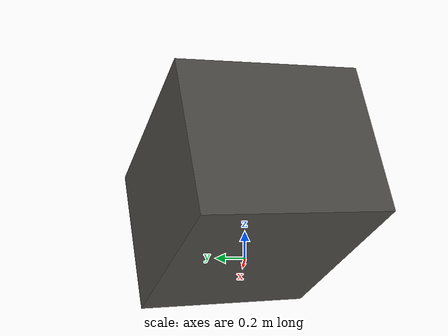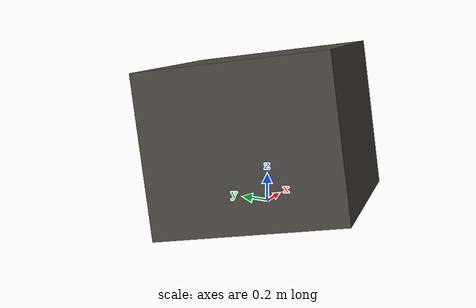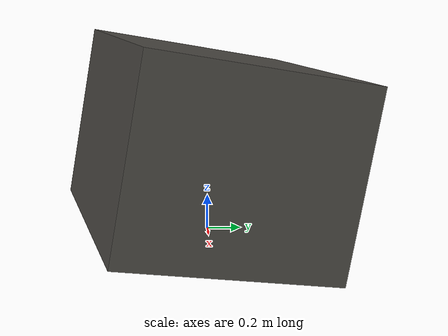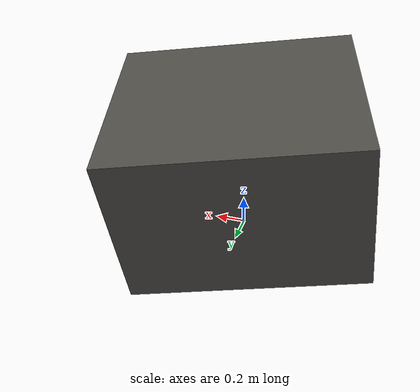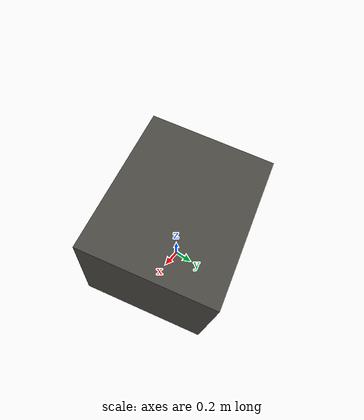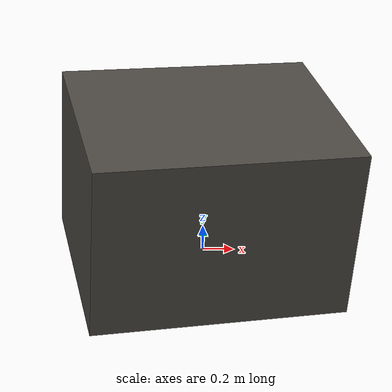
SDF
<?xml version="1.0"?>
<sdf version="1.9">
  <model name="lunar_rock_c">
    <static>true</static>
    <link name="body">
      <visual name="visual">
        <pose>0 0 0.5 -0.15 0.1 0.25</pose>
        <geometry>
          <box><size>1.6 1.3 1.1</size></box>
        </geometry>
        <material>
          <ambient>0.25 0.24 0.22 1</ambient>
          <diffuse>0.30 0.29 0.27 1</diffuse>
          <specular>0.04 0.04 0.04 1</specular>
        </material>
      </visual>
      <collision name="collision">
        <pose>0 0 0.5 0 0 0</pose>
        <geometry>
          <box><size>1.6 1.3 1.1</size></box>
        </geometry>
      </collision>
    </link>
  </model>
</sdf>
